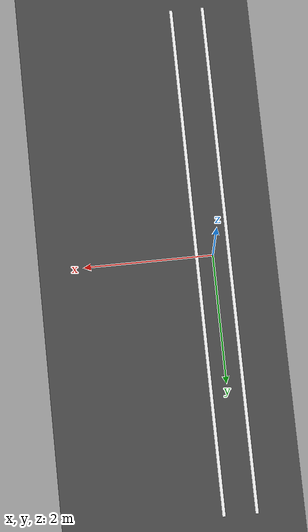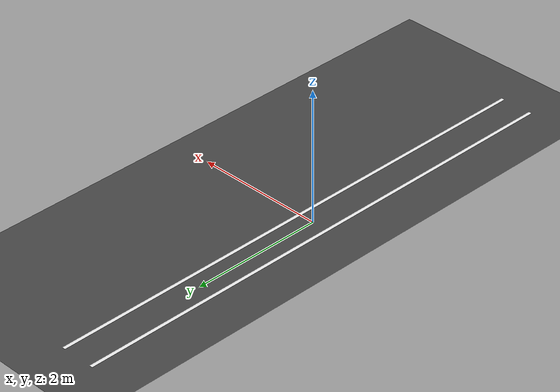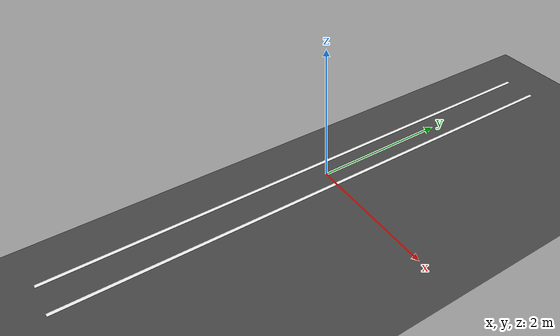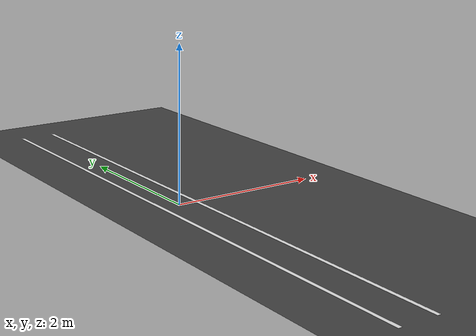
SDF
<?xml version="1.0" ?>
<sdf version="1.8">
  <world name="line_track_world">

    <!-- Physics -->
    <physics name="1ms" type="ignored">
      <max_step_size>0.001</max_step_size>
      <real_time_factor>1.0</real_time_factor>
    </physics>

    <!-- Plugins -->
    <plugin filename="gz-sim-physics-system" name="gz::sim::systems::Physics"/>
    <plugin filename="gz-sim-user-commands-system" name="gz::sim::systems::UserCommands"/>
    <plugin filename="gz-sim-scene-broadcaster-system" name="gz::sim::systems::SceneBroadcaster"/>
    <plugin filename="gz-sim-sensors-system" name="gz::sim::systems::Sensors">
      <render_engine>ogre2</render_engine>
    </plugin>

    <!-- Sun light -->
    <light type="directional" name="sun">
      <cast_shadows>true</cast_shadows>
      <pose>0 0 10 0 0 0</pose>
      <diffuse>0.8 0.8 0.8 1</diffuse>
      <specular>0.2 0.2 0.2 1</specular>
      <attenuation>
        <range>1000</range>
        <constant>0.9</constant>
        <linear>0.01</linear>
        <quadratic>0.001</quadratic>
      </attenuation>
      <direction>-0.5 0.1 -0.9</direction>
    </light>

    <!-- Ground plane with track texture -->
    <model name="ground_plane">
      <static>true</static>
      <link name="link">
        <collision name="collision">
          <geometry>
            <plane>
              <normal>0 0 1</normal>
              <size>10 10</size>
            </plane>
          </geometry>
        </collision>
        <visual name="visual">
          <geometry>
            <plane>
              <normal>0 0 1</normal>
              <size>10 10</size>
            </plane>
          </geometry>
          <material>
            <ambient>0.3 0.3 0.3 1</ambient>
            <diffuse>0.3 0.3 0.3 1</diffuse>
            <specular>0.1 0.1 0.1 1</specular>
          </material>
        </visual>
      </link>
    </model>

    <!-- White line - Left (along Y axis) -->
    <model name="line_left">
      <static>true</static>
      <pose>-0.25 0 0.001 0 0 0</pose>
      <link name="link">
        <visual name="visual">
          <geometry>
            <box>
              <size>0.05 8 0.002</size>
            </box>
          </geometry>
          <material>
            <ambient>1 1 1 1</ambient>
            <diffuse>1 1 1 1</diffuse>
            <specular>0.5 0.5 0.5 1</specular>
          </material>
        </visual>
      </link>
    </model>

    <!-- White line - Right (along Y axis) -->
    <model name="line_right">
      <static>true</static>
      <pose>0.25 0 0.001 0 0 0</pose>
      <link name="link">
        <visual name="visual">
          <geometry>
            <box>
              <size>0.05 8 0.002</size>
            </box>
          </geometry>
          <material>
            <ambient>1 1 1 1</ambient>
            <diffuse>1 1 1 1</diffuse>
            <specular>0.5 0.5 0.5 1</specular>
          </material>
        </visual>
      </link>
    </model>

  </world>
</sdf>
